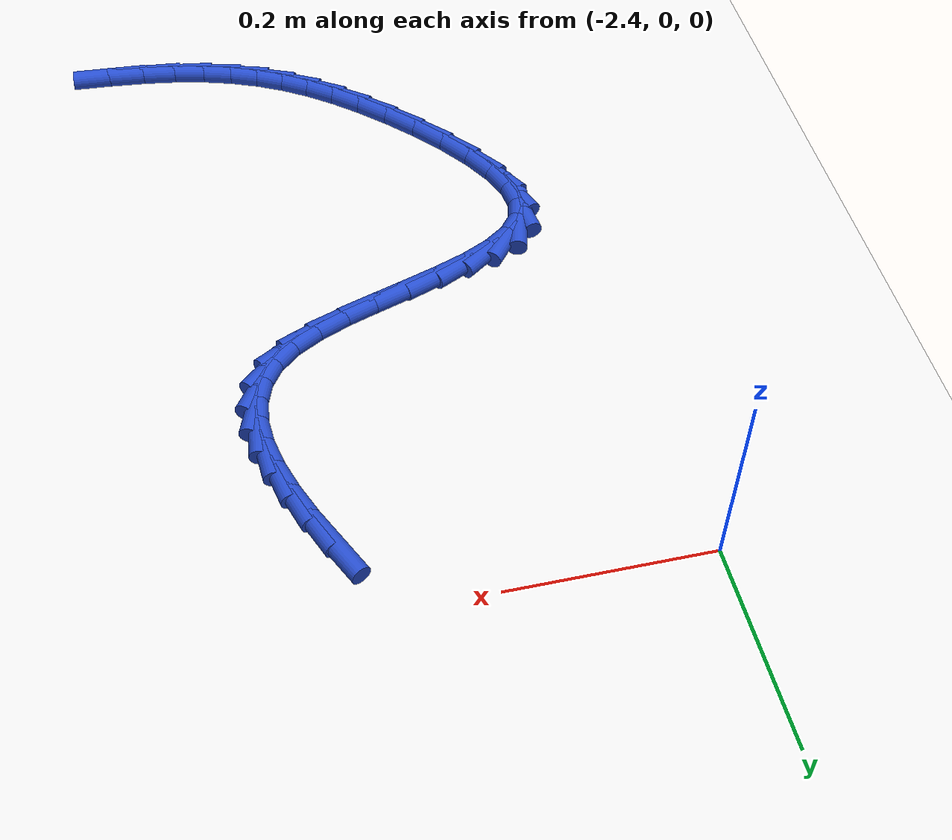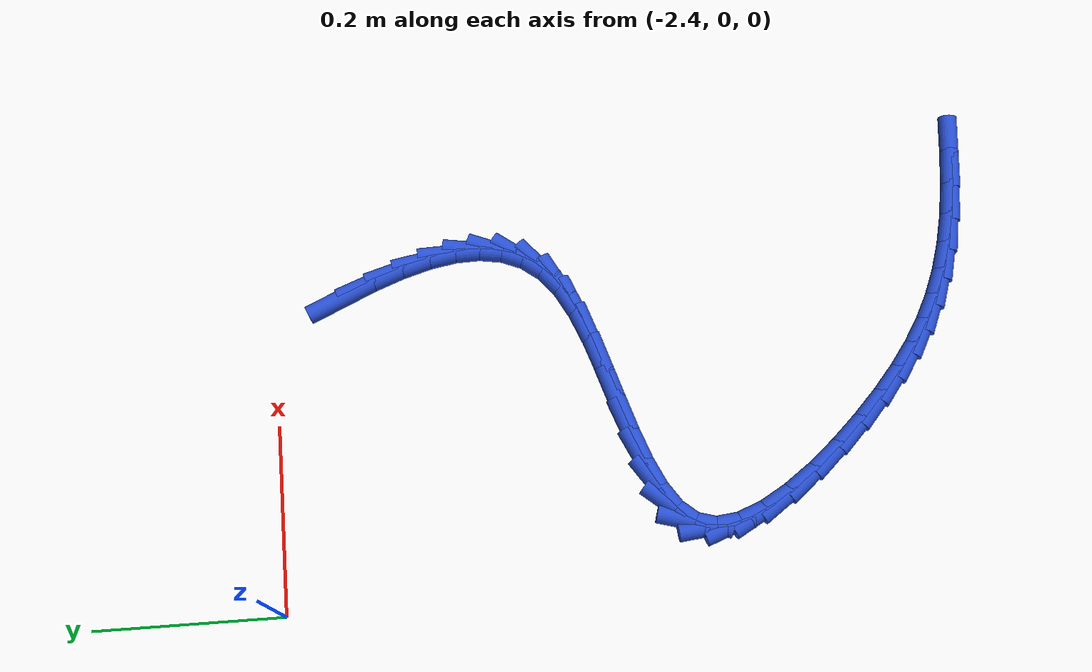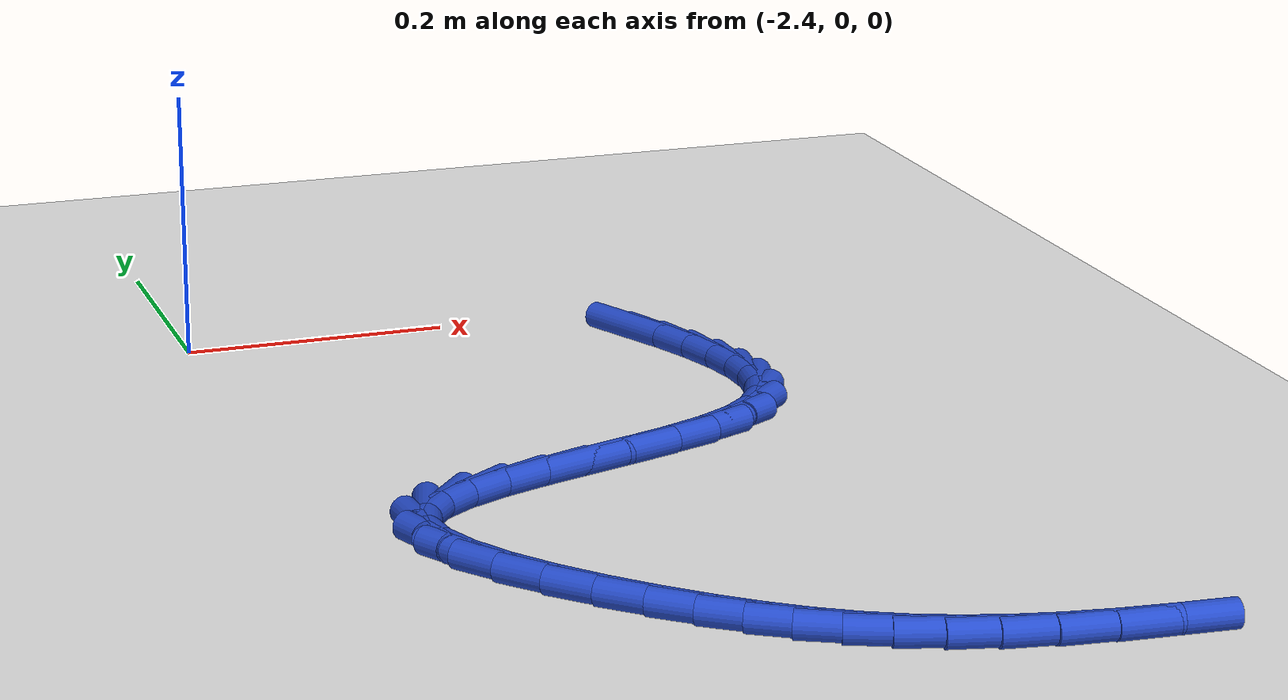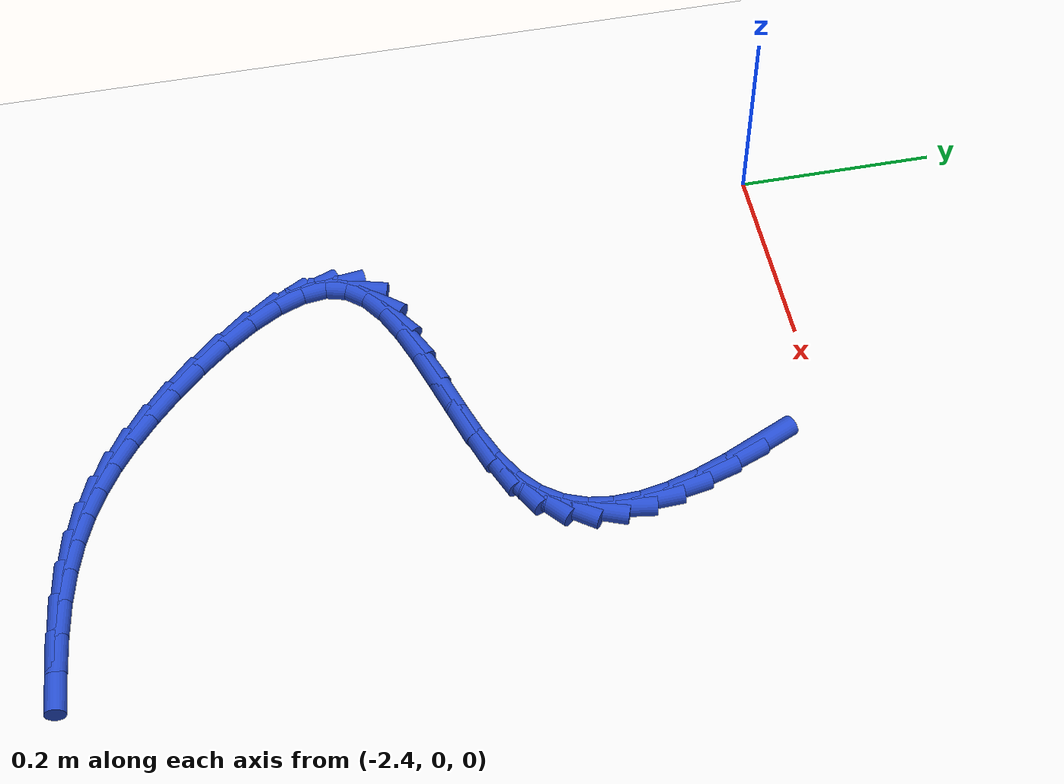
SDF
<sdf version="1.6">
 <world name="default">
  <model name="ground_plane">
   <static>1</static>
   <link name="link">
    <collision name="collision">
     <geometry><plane><normal>0 0 1</normal><size>100 100</size></plane></geometry>
     <surface><friction><ode><mu>100</mu><mu2>50</mu2></ode></friction></surface>
    </collision>
    <visual name="visual">
     <cast_shadows>0</cast_shadows>
     <geometry><plane><normal>0 0 1</normal><size>100 100</size></plane></geometry>
     <material>
      <script><uri>file://media/materials/scripts/gazebo.material</uri><name>Gazebo/WhiteGlow</name></script>
     </material>
    </visual>
   </link>
  </model>
  <model name="line">
   <link name="link_143">
    <pose>-2.0675318572314736 -0.0736028304054263 0.01 0 1.57 -1.1484878683057174</pose>
    <collision name="collision">
     <geometry><cylinder><radius>0.01</radius><length>0.08</length></cylinder></geometry>
    </collision>
    <visual name="visual">
     <material>
      <script><name>Gazebo/Blue</name><uri>file://media/materials/scripts/gazebo.material</uri></script>
     </material>
     <geometry><cylinder><radius>0.01</radius><length>0.08</length></cylinder></geometry>
    </visual>
   </link>
   <link name="link_144">
    <pose>-2.0527801572738786 -0.10643222660960742 0.01 0 1.57 -1.2067681965961092</pose>
    <collision name="collision">
     <geometry><cylinder><radius>0.01</radius><length>0.08</length></cylinder></geometry>
    </collision>
    <visual name="visual">
     <material>
      <script><name>Gazebo/Blue</name><uri>file://media/materials/scripts/gazebo.material</uri></script>
     </material>
     <geometry><cylinder><radius>0.01</radius><length>0.08</length></cylinder></geometry>
    </visual>
   </link>
   <link name="link_145">
    <pose>-2.0407607565328894 -0.1379784904952182 0.01 0 1.57 -1.2859840495448682</pose>
    <collision name="collision">
     <geometry><cylinder><radius>0.01</radius><length>0.08</length></cylinder></geometry>
    </collision>
    <visual name="visual">
     <material>
      <script><name>Gazebo/Blue</name><uri>file://media/materials/scripts/gazebo.material</uri></script>
     </material>
     <geometry><cylinder><radius>0.01</radius><length>0.08</length></cylinder></geometry>
    </visual>
   </link>
   <link name="link_146">
    <pose>-2.0319555546480856 -0.1680538001344574 0.01 0 1.57 -1.3929035726428316</pose>
    <collision name="collision">
     <geometry><cylinder><radius>0.01</radius><length>0.08</length></cylinder></geometry>
    </collision>
    <visual name="visual">
     <material>
      <script><name>Gazebo/Blue</name><uri>file://media/materials/scripts/gazebo.material</uri></script>
     </material>
     <geometry><cylinder><radius>0.01</radius><length>0.08</length></cylinder></geometry>
    </visual>
   </link>
   <link name="link_147">
    <pose>-2.0268464512590443 -0.19647033359952368 0.01 0 1.57 -1.53576709645639</pose>
    <collision name="collision">
     <geometry><cylinder><radius>0.01</radius><length>0.08</length></cylinder></geometry>
    </collision>
    <visual name="visual">
     <material>
      <script><name>Gazebo/Blue</name><uri>file://media/materials/scripts/gazebo.material</uri></script>
     </material>
     <geometry><cylinder><radius>0.01</radius><length>0.08</length></cylinder></geometry>
    </visual>
   </link>
   <link name="link_148">
    <pose>-2.0259153460053447 -0.22304026896261608 0.01 0 1.57 1.4199750988048945</pose>
    <collision name="collision">
     <geometry><cylinder><radius>0.01</radius><length>0.08</length></cylinder></geometry>
    </collision>
    <visual name="visual">
     <material>
      <script><name>Gazebo/Blue</name><uri>file://media/materials/scripts/gazebo.material</uri></script>
     </material>
     <geometry><cylinder><radius>0.01</radius><length>0.08</length></cylinder></geometry>
    </visual>
   </link>
   <link name="link_149">
    <pose>-2.029644138526563 -0.24757578429593308 0.01 0 1.57 1.1924058096728491</pose>
    <collision name="collision">
     <geometry><cylinder><radius>0.01</radius><length>0.08</length></cylinder></geometry>
    </collision>
    <visual name="visual">
     <material>
      <script><name>Gazebo/Blue</name><uri>file://media/materials/scripts/gazebo.material</uri></script>
     </material>
     <geometry><cylinder><radius>0.01</radius><length>0.08</length></cylinder></geometry>
    </visual>
   </link>
   <link name="link_150">
    <pose>-2.038514728462279 -0.2698890576716738 0.01 0 1.57 0.941368545891448</pose>
    <collision name="collision">
     <geometry><cylinder><radius>0.01</radius><length>0.08</length></cylinder></geometry>
    </collision>
    <visual name="visual">
     <material>
      <script><name>Gazebo/Blue</name><uri>file://media/materials/scripts/gazebo.material</uri></script>
     </material>
     <geometry><cylinder><radius>0.01</radius><length>0.08</length></cylinder></geometry>
    </visual>
   </link>
   <link name="link_151">
    <pose>-2.0530090154520706 -0.28979226716203677 0.01 0 1.57 0.6987867918585061</pose>
    <collision name="collision">
     <geometry><cylinder><radius>0.01</radius><length>0.08</length></cylinder></geometry>
    </collision>
    <visual name="visual">
     <material>
      <script><name>Gazebo/Blue</name><uri>file://media/materials/scripts/gazebo.material</uri></script>
     </material>
     <geometry><cylinder><radius>0.01</radius><length>0.08</length></cylinder></geometry>
    </visual>
   </link>
   <link name="link_152">
    <pose>-2.073606441094195 -0.30709856565579424 0.01 0 1.57 0.5069188649373703</pose>
    <collision name="collision">
     <geometry><cylinder><radius>0.01</radius><length>0.08</length></cylinder></geometry>
    </collision>
    <visual name="visual">
     <material>
      <script><name>Gazebo/Blue</name><uri>file://media/materials/scripts/gazebo.material</uri></script>
     </material>
     <geometry><cylinder><radius>0.01</radius><length>0.08</length></cylinder></geometry>
    </visual>
   </link>
   <link name="link_153">
    <pose>-2.1001865183673067 -0.3218590273317002 0.01 0 1.57 0.391218545048139</pose>
    <collision name="collision">
     <geometry><cylinder><radius>0.01</radius><length>0.08</length></cylinder></geometry>
    </collision>
    <visual name="visual">
     <material>
      <script><name>Gazebo/Blue</name><uri>file://media/materials/scripts/gazebo.material</uri></script>
     </material>
     <geometry><cylinder><radius>0.01</radius><length>0.08</length></cylinder></geometry>
    </visual>
   </link>
   <link name="link_154">
    <pose>-2.1312492886156287 -0.3346718009037579 0.01 0 1.57 0.32853390056385845</pose>
    <collision name="collision">
     <geometry><cylinder><radius>0.01</radius><length>0.08</length></cylinder></geometry>
    </collision>
    <visual name="visual">
     <material>
      <script><name>Gazebo/Blue</name><uri>file://media/materials/scripts/gazebo.material</uri></script>
     </material>
     <geometry><cylinder><radius>0.01</radius><length>0.08</length></cylinder></geometry>
    </visual>
   </link>
   <link name="link_155">
    <pose>-2.165101625347015 -0.3462116421010546 0.01 0 1.57 0.30341061377185236</pose>
    <collision name="collision">
     <geometry><cylinder><radius>0.01</radius><length>0.08</length></cylinder></geometry>
    </collision>
    <visual name="visual">
     <material>
      <script><name>Gazebo/Blue</name><uri>file://media/materials/scripts/gazebo.material</uri></script>
     </material>
     <geometry><cylinder><radius>0.01</radius><length>0.08</length></cylinder></geometry>
    </visual>
   </link>
   <link name="link_156">
    <pose>-2.2000504020693255 -0.35715330665267736 0.01 0 1.57 0.31037813354107574</pose>
    <collision name="collision">
     <geometry><cylinder><radius>0.01</radius><length>0.08</length></cylinder></geometry>
    </collision>
    <visual name="visual">
     <material>
      <script><name>Gazebo/Blue</name><uri>file://media/materials/scripts/gazebo.material</uri></script>
     </material>
     <geometry><cylinder><radius>0.01</radius><length>0.08</length></cylinder></geometry>
    </visual>
   </link>
   <link name="link_157">
    <pose>-2.2344024922904158 -0.36817155028771315 0.01 0 1.57 0.3518134291060292</pose>
    <collision name="collision">
     <geometry><cylinder><radius>0.01</radius><length>0.08</length></cylinder></geometry>
    </collision>
    <visual name="visual">
     <material>
      <script><name>Gazebo/Blue</name><uri>file://media/materials/scripts/gazebo.material</uri></script>
     </material>
     <geometry><cylinder><radius>0.01</radius><length>0.08</length></cylinder></geometry>
    </visual>
   </link>
   <link name="link_158">
    <pose>-2.2664647695181412 -0.37994112873524905 0.01 0 1.57 0.43931363850416283</pose>
    <collision name="collision">
     <geometry><cylinder><radius>0.01</radius><length>0.08</length></cylinder></geometry>
    </collision>
    <visual name="visual">
     <material>
      <script><name>Gazebo/Blue</name><uri>file://media/materials/scripts/gazebo.material</uri></script>
     </material>
     <geometry><cylinder><radius>0.01</radius><length>0.08</length></cylinder></geometry>
    </visual>
   </link>
   <link name="link_159">
    <pose>-2.2945441072603607 -0.3931367977243721 0.01 0 1.57 0.5990754714090254</pose>
    <collision name="collision">
     <geometry><cylinder><radius>0.01</radius><length>0.08</length></cylinder></geometry>
    </collision>
    <visual name="visual">
     <material>
      <script><name>Gazebo/Blue</name><uri>file://media/materials/scripts/gazebo.material</uri></script>
     </material>
     <geometry><cylinder><radius>0.01</radius><length>0.08</length></cylinder></geometry>
    </visual>
   </link>
   <link name="link_160">
    <pose>-2.3169473790249304 -0.40843331298416935 0.01 0 1.57 0.8769083112500563</pose>
    <collision name="collision">
     <geometry><cylinder><radius>0.01</radius><length>0.08</length></cylinder></geometry>
    </collision>
    <visual name="visual">
     <material>
      <script><name>Gazebo/Blue</name><uri>file://media/materials/scripts/gazebo.material</uri></script>
     </material>
     <geometry><cylinder><radius>0.01</radius><length>0.08</length></cylinder></geometry>
    </visual>
   </link>
   <link name="link_161">
    <pose>-2.3319814583197065 -0.4265054302437279 0.01 0 1.57 1.2956327655114852</pose>
    <collision name="collision">
     <geometry><cylinder><radius>0.01</radius><length>0.08</length></cylinder></geometry>
    </collision>
    <visual name="visual">
     <material>
      <script><name>Gazebo/Blue</name><uri>file://media/materials/scripts/gazebo.material</uri></script>
     </material>
     <geometry><cylinder><radius>0.01</radius><length>0.08</length></cylinder></geometry>
    </visual>
   </link>
   <link name="link_162">
    <pose>-2.338044595430633 -0.4479811504073528 0.01 0 1.57 -1.4547996952405402</pose>
    <collision name="collision">
     <geometry><cylinder><radius>0.01</radius><length>0.08</length></cylinder></geometry>
    </collision>
    <visual name="visual">
     <material>
      <script><name>Gazebo/Blue</name><uri>file://media/materials/scripts/gazebo.material</uri></script>
     </material>
     <geometry><cylinder><radius>0.01</radius><length>0.08</length></cylinder></geometry>
    </visual>
   </link>
   <link name="link_163">
    <pose>-2.3351699633232914 -0.47265193226198954 0.01 0 1.57 -1.2033547015904633</pose>
    <collision name="collision">
     <geometry><cylinder><radius>0.01</radius><length>0.08</length></cylinder></geometry>
    </collision>
    <visual name="visual">
     <material>
      <script><name>Gazebo/Blue</name><uri>file://media/materials/scripts/gazebo.material</uri></script>
     </material>
     <geometry><cylinder><radius>0.01</radius><length>0.08</length></cylinder></geometry>
    </visual>
   </link>
   <link name="link_164">
    <pose>-2.3248019880547433 -0.49958713766365026 0.01 0 1.57 -1.0455227967140226</pose>
    <collision name="collision">
     <geometry><cylinder><radius>0.01</radius><length>0.08</length></cylinder></geometry>
    </collision>
    <visual name="visual">
     <material>
      <script><name>Gazebo/Blue</name><uri>file://media/materials/scripts/gazebo.material</uri></script>
     </material>
     <geometry><cylinder><radius>0.01</radius><length>0.08</length></cylinder></geometry>
    </visual>
   </link>
   <link name="link_165">
    <pose>-2.3084314348136714 -0.5278324180900142 0.01 0 1.57 -0.9401357561276776</pose>
    <collision name="collision">
     <geometry><cylinder><radius>0.01</radius><length>0.08</length></cylinder></geometry>
    </collision>
    <visual name="visual">
     <material>
      <script><name>Gazebo/Blue</name><uri>file://media/materials/scripts/gazebo.material</uri></script>
     </material>
     <geometry><cylinder><radius>0.01</radius><length>0.08</length></cylinder></geometry>
    </visual>
   </link>
   <link name="link_166">
    <pose>-2.287549068788756 -0.5564334250187599 0.01 0 1.57 -0.864204048610214</pose>
    <collision name="collision">
     <geometry><cylinder><radius>0.01</radius><length>0.08</length></cylinder></geometry>
    </collision>
    <visual name="visual">
     <material>
      <script><name>Gazebo/Blue</name><uri>file://media/materials/scripts/gazebo.material</uri></script>
     </material>
     <geometry><cylinder><radius>0.01</radius><length>0.08</length></cylinder></geometry>
    </visual>
   </link>
   <link name="link_167">
    <pose>-2.263645655168677 -0.5844358099275665 0.01 0 1.57 -0.8049727147378422</pose>
    <collision name="collision">
     <geometry><cylinder><radius>0.01</radius><length>0.08</length></cylinder></geometry>
    </collision>
    <visual name="visual">
     <material>
      <script><name>Gazebo/Blue</name><uri>file://media/materials/scripts/gazebo.material</uri></script>
     </material>
     <geometry><cylinder><radius>0.01</radius><length>0.08</length></cylinder></geometry>
    </visual>
   </link>
   <link name="link_168">
    <pose>-2.2382119591421166 -0.6108852242941125 0.01 0 1.57 -0.754148735744835</pose>
    <collision name="collision">
     <geometry><cylinder><radius>0.01</radius><length>0.08</length></cylinder></geometry>
    </collision>
    <visual name="visual">
     <material>
      <script><name>Gazebo/Blue</name><uri>file://media/materials/scripts/gazebo.material</uri></script>
     </material>
     <geometry><cylinder><radius>0.01</radius><length>0.08</length></cylinder></geometry>
    </visual>
   </link>
   <link name="link_169">
    <pose>-2.2127025938659477 -0.6348481067182372 0.01 0 1.57 -0.6993967250432398</pose>
    <collision name="collision">
     <geometry><cylinder><radius>0.01</radius><length>0.08</length></cylinder></geometry>
    </collision>
    <visual name="visual">
     <material>
      <script><name>Gazebo/Blue</name><uri>file://media/materials/scripts/gazebo.material</uri></script>
     </material>
     <geometry><cylinder><radius>0.01</radius><length>0.08</length></cylinder></geometry>
    </visual>
   </link>
   <link name="link_170">
    <pose>-2.1876599718949836 -0.655915403673977 0.01 0 1.57 -0.6323896616276623</pose>
    <collision name="collision">
     <geometry><cylinder><radius>0.01</radius><length>0.08</length></cylinder></geometry>
    </collision>
    <visual name="visual">
     <material>
      <script><name>Gazebo/Blue</name><uri>file://media/materials/scripts/gazebo.material</uri></script>
     </material>
     <geometry><cylinder><radius>0.01</radius><length>0.08</length></cylinder></geometry>
    </visual>
   </link>
   <link name="link_171">
    <pose>-2.1626670808503974 -0.6742297231133936 0.01 0 1.57 -0.5543867806039049</pose>
    <collision name="collision">
     <geometry><cylinder><radius>0.01</radius><length>0.08</length></cylinder></geometry>
    </collision>
    <visual name="visual">
     <material>
      <script><name>Gazebo/Blue</name><uri>file://media/materials/scripts/gazebo.material</uri></script>
     </material>
     <geometry><cylinder><radius>0.01</radius><length>0.08</length></cylinder></geometry>
    </visual>
   </link>
   <link name="link_172">
    <pose>-2.1372613039115826 -0.6899598951690197 0.01 0 1.57 -0.4689366251350924</pose>
    <collision name="collision">
     <geometry><cylinder><radius>0.01</radius><length>0.08</length></cylinder></geometry>
    </collision>
    <visual name="visual">
     <material>
      <script><name>Gazebo/Blue</name><uri>file://media/materials/scripts/gazebo.material</uri></script>
     </material>
     <geometry><cylinder><radius>0.01</radius><length>0.08</length></cylinder></geometry>
    </visual>
   </link>
   <link name="link_173">
    <pose>-2.110980024257932 -0.7032747499733875 0.01 0 1.57 -0.3811494379396673</pose>
    <collision name="collision">
     <geometry><cylinder><radius>0.01</radius><length>0.08</length></cylinder></geometry>
    </collision>
    <visual name="visual">
     <material>
      <script><name>Gazebo/Blue</name><uri>file://media/materials/scripts/gazebo.material</uri></script>
     </material>
     <geometry><cylinder><radius>0.01</radius><length>0.08</length></cylinder></geometry>
    </visual>
   </link>
   <link name="link_174">
    <pose>-2.0833606250688397 -0.7143431176590296 0.01 0 1.57 -0.29658388620212495</pose>
    <collision name="collision">
     <geometry><cylinder><radius>0.01</radius><length>0.08</length></cylinder></geometry>
    </collision>
    <visual name="visual">
     <material>
      <script><name>Gazebo/Blue</name><uri>file://media/materials/scripts/gazebo.material</uri></script>
     </material>
     <geometry><cylinder><radius>0.01</radius><length>0.08</length></cylinder></geometry>
    </visual>
   </link>
   <link name="link_175">
    <pose>-2.0539404895236983 -0.7233338283584788 0.01 0 1.57 -0.2199050241682146</pose>
    <collision name="collision">
     <geometry><cylinder><radius>0.01</radius><length>0.08</length></cylinder></geometry>
    </collision>
    <visual name="visual">
     <material>
      <script><name>Gazebo/Blue</name><uri>file://media/materials/scripts/gazebo.material</uri></script>
     </material>
     <geometry><cylinder><radius>0.01</radius><length>0.08</length></cylinder></geometry>
    </visual>
   </link>
   <link name="link_176">
    <pose>-2.0222570008019005 -0.7304157122042672 0.01 0 1.57 -0.15402208383314334</pose>
    <collision name="collision">
     <geometry><cylinder><radius>0.01</radius><length>0.08</length></cylinder></geometry>
    </collision>
    <visual name="visual">
     <material>
      <script><name>Gazebo/Blue</name><uri>file://media/materials/scripts/gazebo.material</uri></script>
     </material>
     <geometry><cylinder><radius>0.01</radius><length>0.08</length></cylinder></geometry>
    </visual>
   </link>
   <link name="link_177">
    <pose>-1.9878481200240319 -0.7357577493802998 0.01 0 1.57 -0.10344051809000068</pose>
    <collision name="collision">
     <geometry><cylinder><radius>0.01</radius><length>0.08</length></cylinder></geometry>
    </collision>
    <visual name="visual">
     <material>
      <script><name>Gazebo/Blue</name><uri>file://media/materials/scripts/gazebo.material</uri></script>
     </material>
     <geometry><cylinder><radius>0.01</radius><length>0.08</length></cylinder></geometry>
    </visual>
   </link>
   <link name="link_178">
    <pose>-1.9506142913349696 -0.7396230318522844 0.01 0 1.57 -0.074052217941638</pose>
    <collision name="collision">
     <geometry><cylinder><radius>0.01</radius><length>0.08</length></cylinder></geometry>
    </collision>
    <visual name="visual">
     <material>
      <script><name>Gazebo/Blue</name><uri>file://media/materials/scripts/gazebo.material</uri></script>
     </material>
     <geometry><cylinder><radius>0.01</radius><length>0.08</length></cylinder></geometry>
    </visual>
   </link>
  </model>
 </world>
</sdf>
